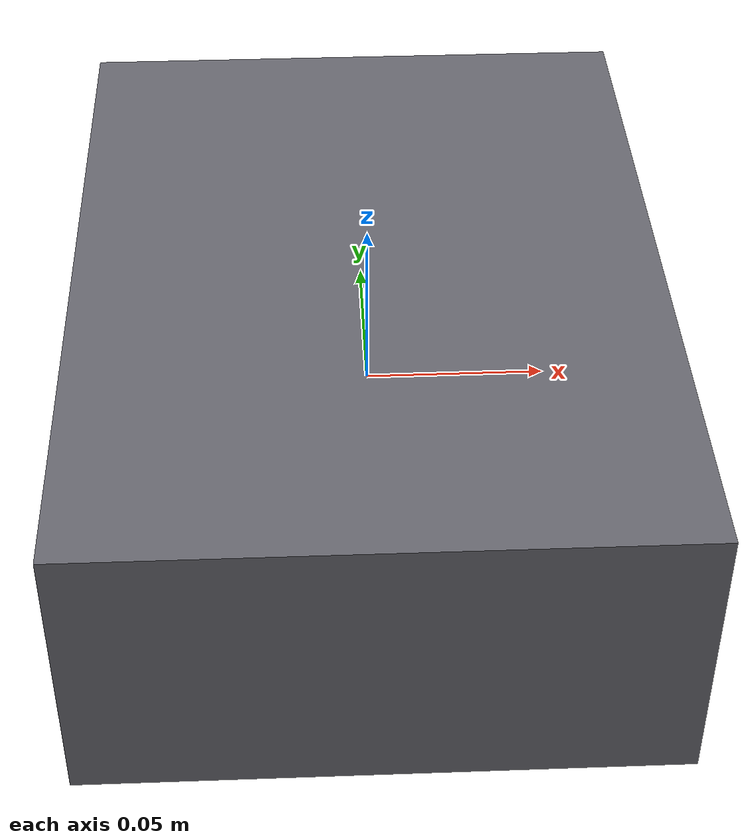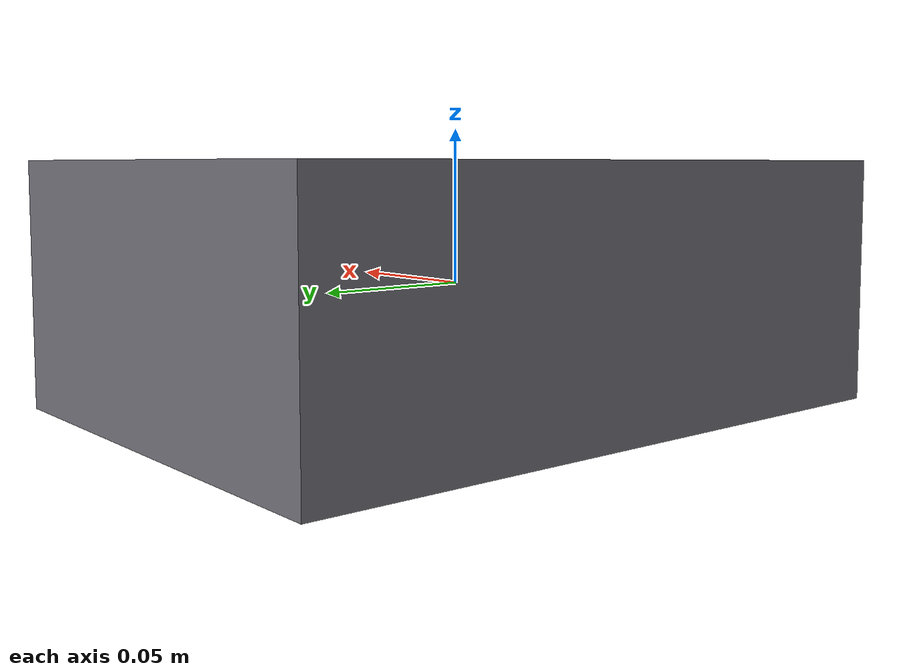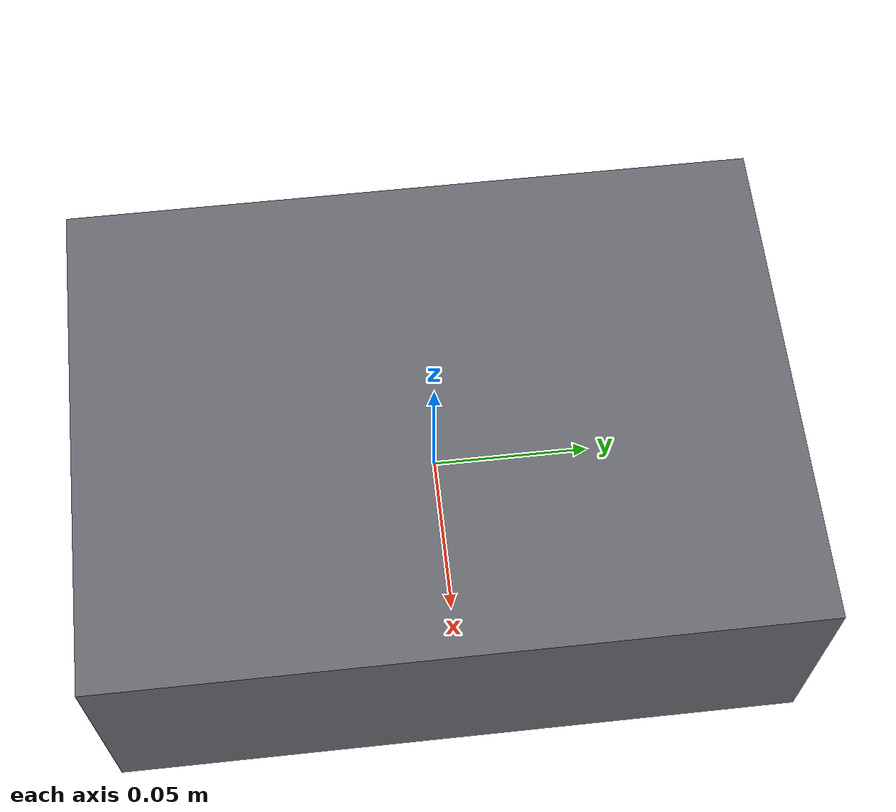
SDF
<?xml version="1.0"?>
<sdf version="1.9">
  <model name="arena_pedestal">
    <static>true</static>
    <link name="link">
      <visual name="visual">
        <geometry><box><size>0.16 0.22 0.08</size></box></geometry>
        <material>
          <ambient>0.42 0.42 0.45 1</ambient>
          <diffuse>0.42 0.42 0.45 1</diffuse>
        </material>
      </visual>
      <collision name="collision">
        <geometry><box><size>0.16 0.22 0.08</size></box></geometry>
      </collision>
    </link>
  </model>
</sdf>
